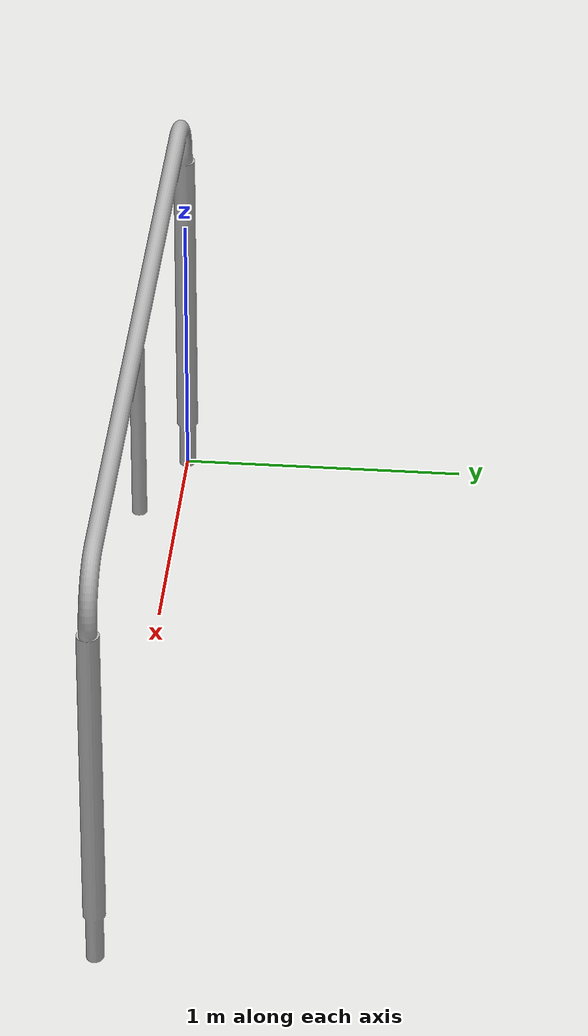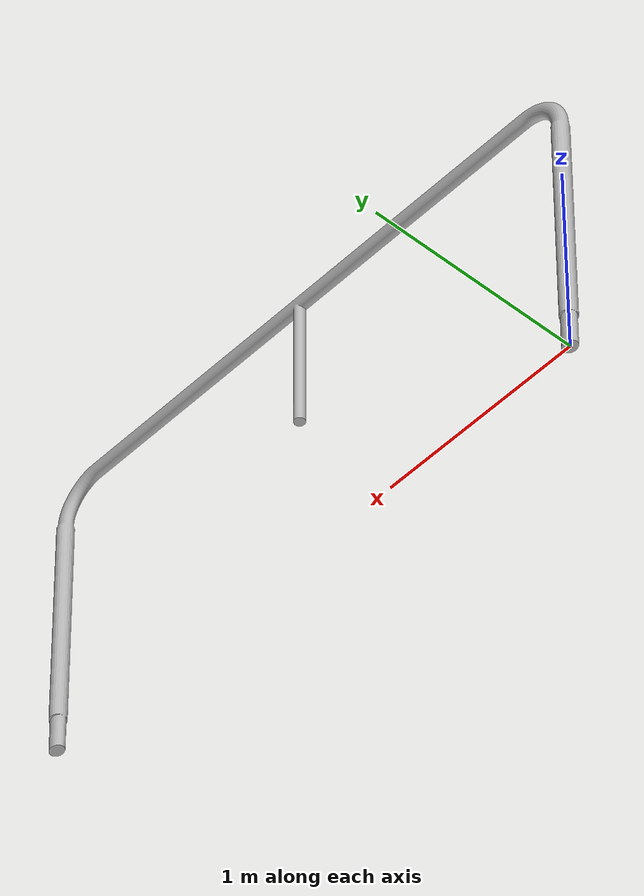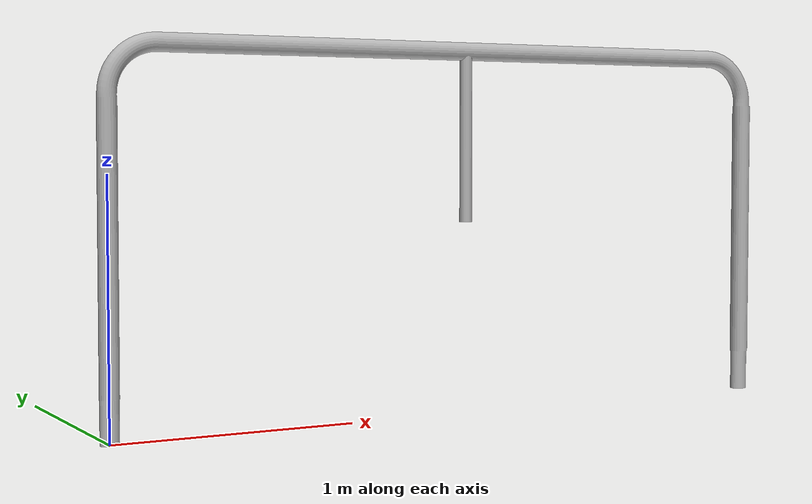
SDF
<?xml version="1.0" ?>
<sdf version="1.5">

<model name="gate">
  <static>true</static>
  <link name="gate_link">

  <visual name="gate">
    <pose>0 0 0 0 0 0</pose>
    <geometry>
      <mesh><uri>model://gate/meshes/gate.obj</uri><scale>1 1 1</scale></mesh>
    </geometry>
  </visual>

  <collision name="gate">
    <pose>0 0 0 0 0 0</pose>
    <geometry>
      <mesh><uri>model://gate/meshes/gate_collision.stl</uri><scale>1 1 1</scale></mesh>
    </geometry>
  </collision>

  </link>
</model>
</sdf>
